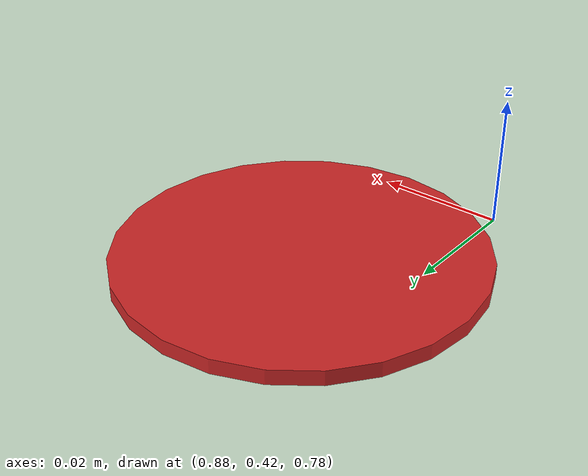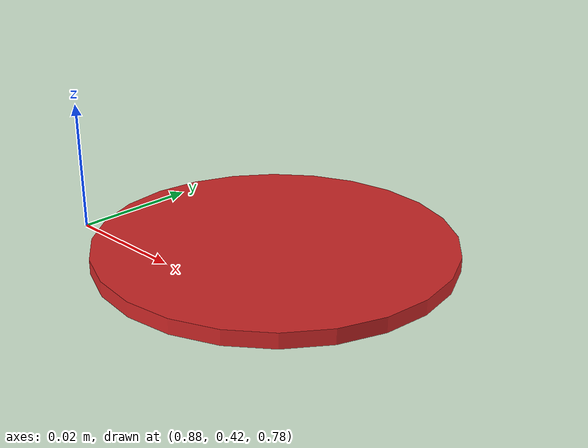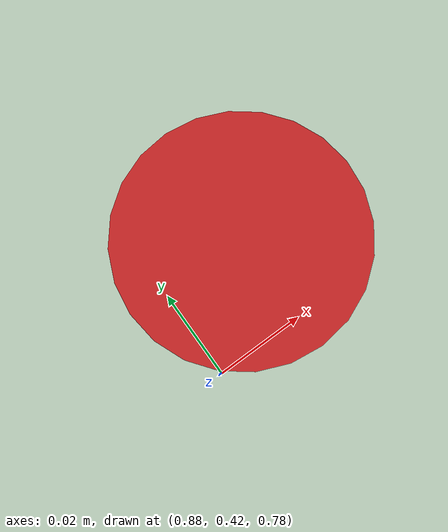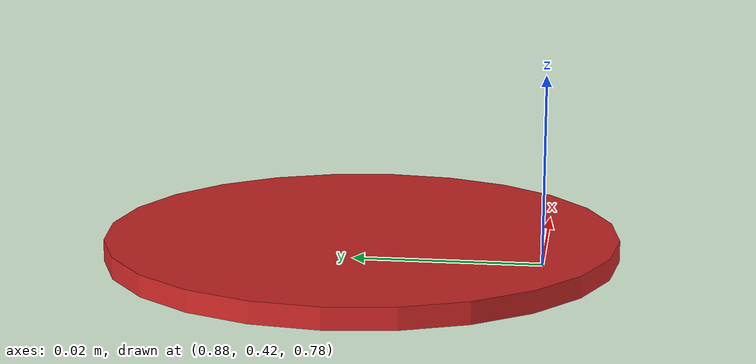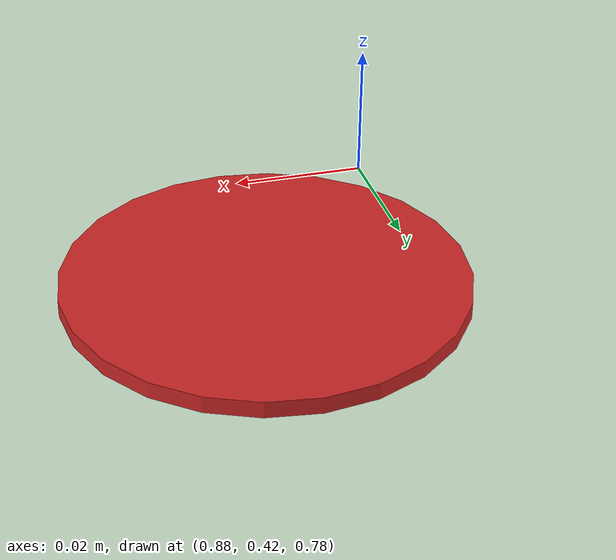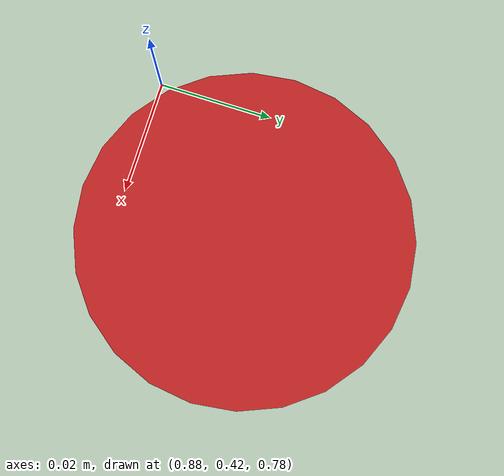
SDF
<sdf version="1.4">
  <world name="default">

    <!-- A global light source -->
    <include>
      <uri>model://sun</uri>
    </include>

    <!-- A ground plane -->
    <include>
      <uri>model://ground_plane</uri>
    </include>

     <!-- physics solver settings -->
     <physics type="ode">
      <real_time_update_rate>1000.0</real_time_update_rate>
      <max_step_size>0.001</max_step_size>
      <real_time_factor>1.0</real_time_factor>
      <max_contacts>10</max_contacts>
      <gravity>0 0 -9.8</gravity>
      <ode>
        <solver>
          <type>world</type>
          <!-- number of iters fo each step, slows performance -->
          <iters>50</iters>
          <precon_iters>0</precon_iters>
          <!-- successive over-relaxation -->
          <sor>1.3</sor>
          <!-- time duration that advances with each iteration (> max_step_size) -->
          <min_step_size>0.001</min_step_size>
          <use_dynamic_moi_rescaling>0</use_dynamic_moi_rescaling>
        </solver>
        <constraints>
          <!-- constraint force mixing -->
          <cfm>0.00001</cfm>
          <!-- error reduction -->
          <erp>0.2</erp>
          <!-- maximum correcting velocitites allowed when resolving contacts -->
          <contact_max_correcting_vel>100</contact_max_correcting_vel>
          <!-- depth of surface layer around all geometry objects, contacts are allowed -->
          <!-- to sink into surface up to given depth, increasing can help prevent jittering -->
          <contact_surface_layer>0</contact_surface_layer>
        </constraints>
      </ode>
    </physics>

  <model name='puk'>
      <pose>0.901 0.442 1.0 0 -0 0</pose>

      <link name='link'>
        <pose>0 0 0 0 -0 0</pose>
        <self_collide>0</self_collide>
        <kinematic>0</kinematic>
        <gravity>1</gravity>
        <must_be_base_link>1</must_be_base_link>
        <!-- exponential damping of the link's velocity -->
        <velocity_decay>
          <!-- linear damping -->
          <linear>0</linear>
          <!-- angular damping -->
          <angular>0</angular>
        </velocity_decay>
        <inertial>
          <mass>0.011</mass>
          <inertia>
            <ixx>2.47866667e-6</ixx>
            <ixy>0</ixy>
            <ixz>0</ixz>
            <iyy>2.47866667e-6</iyy>
            <iyz>0</iyz>
            <izz>4.95e-6</izz>
          </inertia>
        </inertial>
        <collision name='collision'>
          <geometry>
            <cylinder>
              <radius>0.03</radius>
              <length>0.0025</length>
            </cylinder>
          </geometry>
          <max_contacts>0</max_contacts>
          <surface>
            <bounce>
              <!-- ratio of the final to initial relative velocity between two objects after they collide -->
              <!-- coefficient e = relative velocity after collision / relative velocity before collision -->
              <!-- bounce capture velocity -->
            </bounce>
            <friction>
              <ode>
                <!-- Coulomb friction coefficient for the first friction direction -->
                <mu>0</mu>
                <!-- friction coefficient for the second friction direction (perpendicular to the first friction direction) -->
                <mu2>0</mu2>
                <!-- 3-tuple specifying direction of mu in the collision local reference frame -->
                <!-- force dependent slip direction 1 in the collision local reference frame  -->
                <!-- force dependent slip direction 2 in the collision local reference frame  -->
              </ode>
            </friction>
            <contact>
              <!-- flag to disable contact force -->
              <collide_without_contact>0</collide_without_contact>
              <!-- bitmask for collision filtering -->
              <collide_without_contact_bitmask>1</collide_without_contact_bitmask>
              <!-- bitmask for collision filtering, overrides collide_without_contact -->
              <ode>
                <!-- soft constraint force mixing -->
                <soft_cfm>0</soft_cfm>
                <!-- soft error reduction -->
                <soft_erp>0</soft_erp>
                <!-- dynamically stiffness equivalent, coefficient for contact joints -->
                <kp>1e+12</kp>
                <!-- dynamically damping equivalent, coefficient for contact joints -->
                <kd>1</kd>
                <!-- maximum contact correction velocity truncation term -->
                <max_vel>0.01</max_vel>
                <!-- minimum allowable depth before contact correction impulse is applied -->
                <min_depth>0</min_depth>
              </ode>
            </contact>
          </surface>
        </collision>
        <!-- we don't want this visible -->
      </link>

      <link name='link2'>
        <pose>0 0 -0.224 0 -0 0</pose>
        <self_collide>1</self_collide>
        <kinematic>0</kinematic>
        <gravity>1</gravity>
        <must_be_base_link>0</must_be_base_link>
        <!-- exponential damping of the link's velocity -->
        <velocity_decay>
          <!-- linear damping -->
          <linear>0.0001</linear>
          <!-- angular damping -->
          <angular>0.0001</angular>
        </velocity_decay>
        <inertial>
          <mass>0.011</mass>
          <inertia>
            <ixx>2.47866667e-6</ixx>
            <ixy>0</ixy>
            <ixz>0</ixz>
            <iyy>2.47866667e-6</iyy>
            <iyz>0</iyz>
            <izz>4.95e-6</izz>
          </inertia>
        </inertial>
        <collision name='collision'>
          <geometry>
            <cylinder>
              <radius>0.03</radius>
              <length>0.0025</length>
            </cylinder>
          </geometry>
          <max_contacts>10</max_contacts>
          <surface>
            <bounce>
              <!-- ratio of the final to initial relative velocity between two objects after they collide -->
              <!-- coefficient e = relative velocity after collision / relative velocity before collision -->
              <!-- bounce capture velocity -->
            </bounce>
            <friction>
              <ode>
                <!-- Coulomb friction coefficient for the first friction direction -->
                <mu>0.0001</mu>
                <!-- friction coefficient for the second friction direction (perpendicular to the first friction direction) -->
                <mu2>0.0001</mu2>
                <!-- 3-tuple specifying direction of mu in the collision local reference frame -->
                <!-- force dependent slip direction 1 in the collision local reference frame  -->
                <!-- force dependent slip direction 2 in the collision local reference frame  -->
              </ode>
            </friction>
            <contact>
              <!-- flag to disable contact force -->
              <collide_without_contact>0</collide_without_contact>
              <!-- bitmask for collision filtering -->
              <collide_without_contact_bitmask>1</collide_without_contact_bitmask>
              <!-- bitmask for collision filtering, overrides collide_without_contact -->
              <ode>
                <!-- soft constraint force mixing -->
                <soft_cfm>0</soft_cfm>
                <!-- soft error reduction -->
                <soft_erp>0</soft_erp>
                <!-- dynamically stiffness equivalent, coefficient for contact joints -->
                <kp>1e+12</kp>
                <!-- dynamically damping equivalent, coefficient for contact joints -->
                <kd>1</kd>
                <!-- maximum contact correction velocity truncation term -->
                <max_vel>0.01</max_vel>
                <!-- minimum allowable depth before contact correction impulse is applied -->
                <min_depth>0</min_depth>
              </ode>
            </contact>
          </surface>
        </collision>
        <visual name='visual'>
          <geometry>
            <cylinder>
              <radius>0.03</radius>
              <length>0.0025</length>
            </cylinder>
          </geometry>
          <material>
            <script>
              <uri>file://media/materials/scripts/gazebo.material</uri>
              <name>Gazebo/Red</name>
            </script>
          </material>
        </visual>
      </link>

      <joint name="joint" type="prismatic">
        <parent>world</parent>
        <child>link</child>
        <pose>0 0 0 0 -0 0</pose>
        <axis>
          <xyz>1 0 0</xyz>
          <dynamics>
            <damping>0</damping>
            <friction>0</friction>
          </dynamics>
          <limit>
            <lower>-1</lower>
            <upper>1</upper>
            <effort>-1</effort>
            <dissipation>1</dissipation>
          </limit>
        </axis>
      </joint>

      <joint name="joint2" type="prismatic">
        <parent>link</parent>
        <child>link2</child>
        <pose>0 0 0 0 -0 0</pose>
        <axis>
          <xyz>0 1 0</xyz>
          <dynamics>
            <damping>0</damping>
            <friction>0</friction>
          </dynamics>
          <limit>
            <lower>-0.5</lower>
            <upper>0.5</upper>
            <effort>-1</effort>
            <dissipation>1</dissipation>
          </limit>
        </axis>
      </joint>
      <static>0</static>
    </model>

    <scene>
      <ambient>0.4 0.4 0.4 1</ambient>
      <background>0.7 0.7 0.7 1</background>
      <shadows>false</shadows>
    </scene>

    <gui fullscreen='0'>
      <camera name='user_camera'>
        <pose> -2.0 -2.0 1.2 0.0 0.0 0.75 </pose>
        <view_controller>orbit</view_controller>
      </camera>
    </gui>

  </world>
</sdf>
